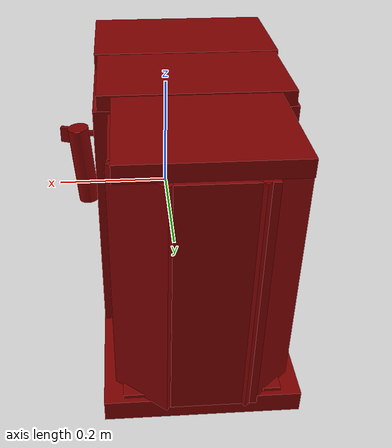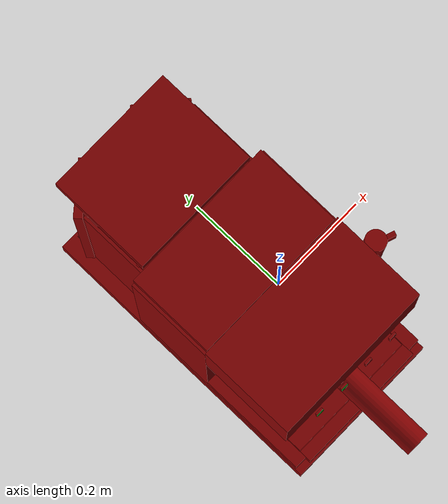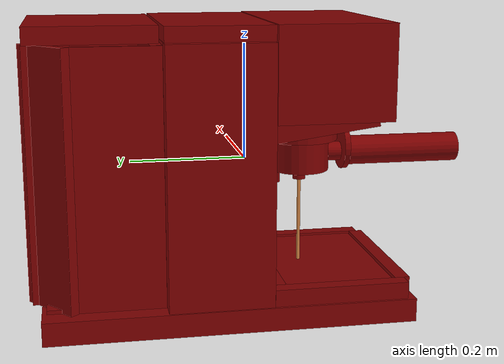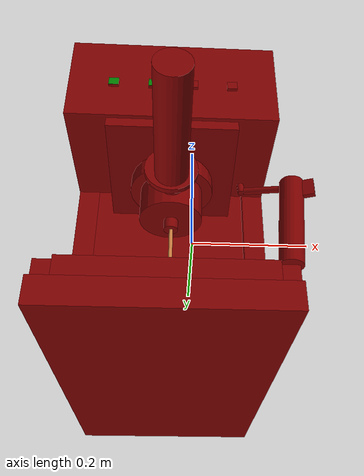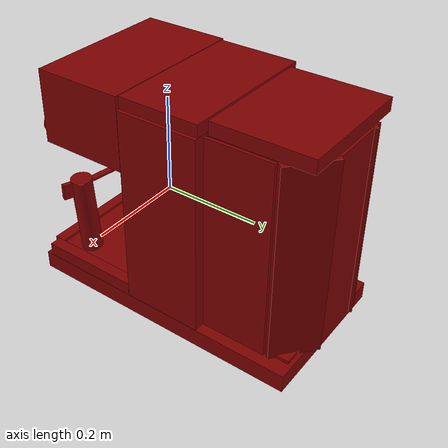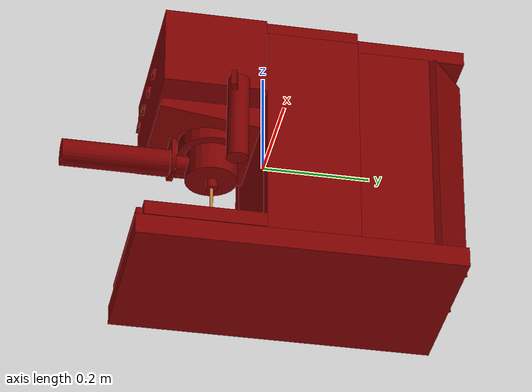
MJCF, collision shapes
<?xml version='1.0' encoding='UTF-8'?>
<mujoco model="model">
  <compiler angle="radian"/>
  <asset>
    <mesh file="visuals/Body001.obj" name="Body001_vis"/>
    <mesh file="visuals/Button001.obj" name="Button001_vis"/>
    <mesh file="visuals/Button002.obj" name="Button002_vis"/>
    <mesh file="visuals/Button003.obj" name="Button003_vis"/>
    <mesh file="visuals/Button004.obj" name="Button004_vis"/>
    <mesh file="visuals/Container001_Clear.obj" name="Container001_Clear_vis"/>
    <mesh file="visuals/Lever001.obj" name="Lever001_vis"/>
    <mesh file="visuals/Lever002.obj" name="Lever002_vis"/>
    <mesh file="visuals/Lid001.obj" name="Lid001_vis"/>
    <mesh file="visuals/Lid002.obj" name="Lid002_vis"/>
    <mesh file="visuals/Lid003.obj" name="Lid003_vis"/>
    <texture file="visuals/T_BC001.png" name="Body001_material" type="2d"/>
    <material name="Body001_material" rgba="1 1 1 1.0" texture="Body001_material" shininess="0.4472135901451111" specular="0.3103448502657381"/>
    <texture file="visuals/T_BC001.png" name="Button001_material" type="2d"/>
    <material name="Button001_material" rgba="1 1 1 1.0" texture="Button001_material" shininess="0.4472135901451111" specular="0.3103448502657381"/>
    <texture file="visuals/T_BC001.png" name="Button002_material" type="2d"/>
    <material name="Button002_material" rgba="1 1 1 1.0" texture="Button002_material" shininess="0.4472135901451111" specular="0.3103448502657381"/>
    <texture file="visuals/T_BC001.png" name="Button003_material" type="2d"/>
    <material name="Button003_material" rgba="1 1 1 1.0" texture="Button003_material" shininess="0.4472135901451111" specular="0.3103448502657381"/>
    <texture file="visuals/T_BC001.png" name="Button004_material" type="2d"/>
    <material name="Button004_material" rgba="1 1 1 1.0" texture="Button004_material" shininess="0.4472135901451111" specular="0.3103448502657381"/>
    <material name="Container001_Clear_material" rgba="0.21932761371135712 0.21932761371135712 0.21932761371135712 0.20000000298023224" shininess="0.4472135901451111" specular="0.3103448502657381"/>
    <texture file="visuals/T_BC001.png" name="Lid001_material" type="2d"/>
    <material name="Lid001_material" rgba="1 1 1 1.0" texture="Lid001_material" shininess="0.4472135901451111" specular="0.3103448502657381"/>
    <texture file="visuals/T_BC001.png" name="Lever001_material" type="2d"/>
    <material name="Lever001_material" rgba="1 1 1 1.0" texture="Lever001_material" shininess="0.4472135901451111" specular="0.3103448502657381"/>
    <texture file="visuals/T_BC001.png" name="Lever002_material" type="2d"/>
    <material name="Lever002_material" rgba="1 1 1 1.0" texture="Lever002_material" shininess="0.4472135901451111" specular="0.3103448502657381"/>
    <texture file="visuals/T_BC001.png" name="Lid002_material" type="2d"/>
    <material name="Lid002_material" rgba="1 1 1 1.0" texture="Lid002_material" shininess="0.4472135901451111" specular="0.3103448502657381"/>
    <texture file="visuals/T_BC001.png" name="Lid003_material" type="2d"/>
    <material name="Lid003_material" rgba="1 1 1 1.0" texture="Lid003_material" shininess="0.4472135901451111" specular="0.3103448502657381"/>
  </asset>
  <default>
    <default class="visual">
      <geom conaffinity="0" contype="0" group="1" type="mesh"/>
    </default>
    <default class="collision">
      <geom group="0" rgba="0.5 0 0 0.5"/>
    </default>
    <default class="spawn">
      <geom group="0" rgba="1 1 1 0.5" contype="0" conaffinity="0"/>
      <site group="0" rgba="1 1 1 0.5"/>
    </default>
    <default class="region">
      <geom group="1" conaffinity="0" contype="0" rgba="0 1 0 0"/>
    </default>
  </default>
  <worldbody>
    <body>
      <body name="object">
        <geom class="collision" type="box" pos="-0.06698377430438995 -0.21905934810638428 0.14914841949939728" size="0.007625220343470573 0.00022514350712299347 0.007682090625166893" quat="0.9989268779754639 -0.04631578177213669 -1.0284169465388057e-17 -1.761066692666002e-24" name="start_button_2" rgba="0.0 0.5 0 0.5"/>
        <geom class="collision" type="box" pos="-0.12744906544685364 -0.2188650667667389 0.14934740960597992" size="0.007625220343470573 0.00018132763216271996 0.007682090625166893" quat="0.9989268779754639 -0.04631578177213669 -1.0284169465388057e-17 -1.761066692666002e-24" name="start_button_1" rgba="0.0 0.5 0 0.5"/>
        <site rgba="0 0 0 0" size="0.009999999776482582 0.009999999776482582" pos="-0.03521912172436714 -0.09033644199371338 -0.19054533541202545" name="receptacle_place_site"/>
        <site type="cylinder" rgba="0.8 0.5 0.25 1" size="0.003000000026077032 0.08108846843242645" pos="-0.03569718077778816 -0.09012578427791595 -0.1128857284784317" name="coffee_liquid"/>
        <geom mesh="Body001_vis" type="mesh" solimp="0.998 0.998 0.001" solref="0.001 1" density="100" friction="0.95 0.3 0.1" class="visual" material="Body001_material"/>
        <geom class="collision" type="box" pos="0.10601072758436203 0.0706346407532692 0.006979886442422867" size="0.017392706125974655 0.08599450439214706 0.2126685529947281" quat="1.0 0.0 0.0 0.0"/>
        <geom class="collision" type="box" pos="-0.03833077847957611 0.05107033997774124 -0.2255401611328125" size="0.16234788298606873 0.30405285954475403 0.019525090232491493" quat="1.0 0.0 0.0 0.0"/>
        <geom class="collision" type="box" pos="-0.03756462782621384 -0.11138033121824265 0.1692173033952713" size="0.16096806526184082 0.0952395647764206 0.07757464796304703" quat="1.0 0.0 0.0 0.0"/>
        <geom class="collision" type="box" pos="-0.03711673989892006 -0.10022946447134018 0.08146994560956955" size="0.09936847537755966 0.10059140622615814 0.02159332111477852" quat="0.9977074861526489 -0.06767409294843674 -1.5026665578034257e-17 -2.6179408185524536e-24"/>
        <geom class="collision" type="box" pos="0.11121337115764618 -0.12672968208789825 -0.19079339504241943" size="0.012803731486201286 0.11179928481578827 0.014126341789960861" quat="1.0 0.0 0.0 0.0"/>
        <geom class="collision" type="box" pos="-0.18583568930625916 -0.12672969698905945 -0.19079339504241943" size="0.012803731486201286 0.11179929971694946 0.014126341789960861" quat="1.0 0.0 0.0 0.0"/>
        <geom class="collision" type="box" pos="-0.03710367530584335 -0.026295773684978485 -0.19079339504241943" size="0.13582965731620789 0.011365379206836224 0.014126341789960861" quat="1.0 0.0 0.0 0.0"/>
        <geom class="collision" type="box" pos="-0.03710367530584335 -0.2364063411951065 -0.19079339504241943" size="0.13582965731620789 0.012578942812979221 0.014126341789960861" quat="1.0 0.0 0.0 0.0"/>
        <geom class="collision" type="cylinder" pos="-0.03651254251599312 -0.08891945332288742 0.052524384111166" size="0.06592085212469101 0.01339646801352501" quat="1.0 0.0 0.0 0.0"/>
        <geom class="collision" type="box" pos="-0.18089686334133148 0.0706346407532692 0.006979886442422867" size="0.017392706125974655 0.08599450439214706 0.2126685529947281" quat="1.0 0.0 0.0 0.0"/>
        <geom class="collision" type="box" pos="-0.03895968198776245 0.14454782009124756 0.006979886442422867" size="0.12488776445388794 0.012081332504749298 0.2126685529947281" quat="1.0 0.0 0.0 0.0"/>
        <geom class="collision" type="box" pos="-0.03895968198776245 -0.010139860212802887 0.006979886442422867" size="0.12488789856433868 0.00527778547257185 0.2126685529947281" quat="1.0 0.0 0.0 0.0"/>
        <geom class="collision" type="box" pos="-0.03895968198776245 0.06472207605838776 0.07898208498954773" size="0.12488776445388794 0.06836161017417908 0.01858154498040676" quat="1.0 0.0 0.0 0.0"/>
        <body name="Button001">
          <joint axis="-2.257804371214515e-18 0.9949027895927429 -0.10083772242069244" pos="-0.12743738293647766 -0.21627914905548096 0.1489403247833252" limited="true" name="Button001_joint" range="0.0 0.002" type="slide" damping="1" frictionloss="1" armature=".01" stiffness="0.2" springref="-0.1"/>
          <geom mesh="Button001_vis" type="mesh" solimp="0.998 0.998 0.001" solref="0.001 1" density="100" friction="0.95 0.3 0.1" class="visual" material="Button001_material"/>
          <geom class="collision" type="box" pos="-0.12744906544685364 -0.21648907661437988 0.14912660419940948" size="0.007625220343470573 0.002039508428424597 0.007682090625166893" quat="0.9989268779754639 -0.04631578177213669 -1.0284169465388057e-17 -1.761066692666002e-24"/>
        </body>
        <body name="Button002">
          <joint axis="-2.7021225760909956e-18 0.9944431781768799 -0.10527441650629044" pos="-0.06743738055229187 -0.21623237431049347 0.14892233908176422" limited="true" name="Button002_joint" range="0.0 0.002" type="slide" damping="1" frictionloss="1" armature=".01" stiffness="0.2" springref="-0.1"/>
          <geom mesh="Button002_vis" type="mesh" solimp="0.998 0.998 0.001" solref="0.001 1" density="100" friction="0.95 0.3 0.1" class="visual" material="Button002_material"/>
          <geom class="collision" type="box" pos="-0.06698377430438995 -0.21657098829746246 0.14891718327999115" size="0.007625220343470573 0.002100009238347411 0.007682090625166893" quat="0.9989268779754639 -0.04631578177213669 -1.0284169465388057e-17 -1.761066692666002e-24"/>
        </body>
        <body name="Button003">
          <joint axis="-2.257804371214515e-18 0.9949027895927429 -0.10083772242069244" pos="-0.0074373818933963776 -0.21627914905548096 0.1489403247833252" limited="true" name="Button003_joint" range="0.0 0.002" type="slide" damping="1" frictionloss="1" armature=".01" stiffness="0.2" springref="-0.1"/>
          <geom mesh="Button003_vis" type="mesh" solimp="0.998 0.998 0.001" solref="0.001 1" density="100" friction="0.95 0.3 0.1" class="visual" material="Button003_material"/>
          <geom class="collision" type="box" pos="-0.007454393431544304 -0.21676823496818542 0.14893551170825958" size="0.007625220343470573 0.0022981101647019386 0.007682090625166893" quat="0.9989268779754639 -0.04631578177213669 -1.0284169465388057e-17 -1.761066692666002e-24"/>
        </body>
        <body name="Button004">
          <joint axis="-2.7021225760909956e-18 0.9944431781768799 -0.10527441650629044" pos="0.052562616765499115 -0.21626147627830505 0.1489265114068985" limited="true" name="Button004_joint" range="0.0 0.002" type="slide" damping="1" frictionloss="1" armature=".01" stiffness="0.2" springref="-0.1"/>
          <geom mesh="Button004_vis" type="mesh" solimp="0.998 0.998 0.001" solref="0.001 1" density="100" friction="0.95 0.3 0.1" class="visual" material="Button004_material"/>
          <geom class="collision" type="box" pos="0.05267142876982689 -0.21676823496818542 0.14893551170825958" size="0.007625220343470573 0.0022981101647019386 0.007682090625166893" quat="0.9989268779754639 -0.04631578177213669 -1.0284169465388057e-17 -1.761066692666002e-24"/>
        </body>
        <body name="Container001_Clear">
          <joint axis="0.0 0.0 1.0" pos="-0.034885503351688385 0.26551902294158936 0.019932106137275696" limited="true" name="Container001_Clear_joint" range="0.0 0.15" type="slide" damping="1" frictionloss="1" armature=".01" stiffness="0.05"/>
          <geom mesh="Container001_Clear_vis" type="mesh" solimp="0.998 0.998 0.001" solref="0.001 1" density="100" friction="0.95 0.3 0.1" class="visual" material="Container001_Clear_material"/>
          <geom class="collision" type="box" pos="0.09781499952077866 0.22729872167110443 0.005407668650150299" size="0.0033565093763172626 0.06981059908866882 0.20998695492744446" quat="1.0 0.0 0.0 0.0"/>
          <geom class="collision" type="box" pos="-0.16869841516017914 0.22729872167110443 0.005407668650150299" size="0.0030643863137811422 0.06981059908866882 0.20998695492744446" quat="1.0 0.0 0.0 0.0"/>
          <geom class="collision" type="box" pos="-0.052766382694244385 0.3578241169452667 0.005407668650150299" size="0.06981059908866882 0.012057838961482048 0.20998695492744446" quat="1.0 0.0 0.0 0.0"/>
          <geom class="collision" type="box" pos="0.05873403698205948 0.33637818694114685 0.005407668650150299" size="0.008076028898358345 0.05256223306059837 0.20998695492744446" quat="0.4269176721572876 0.0 -0.0 -0.904290497303009"/>
          <geom class="collision" type="box" pos="-0.13853377103805542 0.33637818694114685 0.005407668650150299" size="0.008076028898358345 0.05256223306059837 0.20998695492744446" quat="0.4269179105758667 0.0 0.0 0.9042903780937195"/>
          <geom class="collision" type="box" pos="-0.037373848259449005 0.16690471768379211 0.005407668650150299" size="0.12995770573616028 0.009416602551937103 0.20998695492744446" quat="1.0 0.0 0.0 0.0"/>
          <geom class="collision" type="box" pos="-0.037373848259449005 0.26180240511894226 -0.20134928822517395" size="0.12995770573616028 0.08550111949443817 0.003229990601539612" quat="1.0 0.0 0.0 0.0"/>
          <body name="Lid001">
            <joint axis="0.0 0.0 1.0" pos="-0.03497689589858055 0.2646665573120117 0.2320042997598648" limited="true" name="Lid001_joint" range="0.0 0.1" type="slide" damping="1" frictionloss="1" armature=".01" stiffness="0.05"/>
            <geom mesh="Lid001_vis" type="mesh" solimp="0.998 0.998 0.001" solref="0.001 1" density="100" friction="0.95 0.3 0.1" class="visual" material="Lid001_material"/>
            <geom class="collision" type="box" pos="-0.034957155585289 0.26454535126686096 0.23185306787490845" size="0.13023555278778076 0.10215763747692108 0.014017188921570778" quat="1.0 0.0 0.0 0.0"/>
          </body>
        </body>
        <body name="Lever001">
          <joint axis="0.0 0.0 1.0" pos="-0.03650657832622528 -0.09061235934495926 0.03931407257914543" limited="true" name="Lever001_joint" range="-0.7853981633974483 0.7853981633974483" type="hinge" damping="1" frictionloss="1" armature=".01" stiffness="1"/>
          <geom mesh="Lever001_vis" type="mesh" solimp="0.998 0.998 0.001" solref="0.001 1" density="100" friction="0.95 0.3 0.1" class="visual" material="Lever001_material"/>
          <geom class="collision" type="cylinder" pos="-0.03671518340706825 -0.09094586968421936 0.011099593713879585" size="0.04918080195784569 0.026982350274920464" quat="1.0 0.0 0.0 0.0"/>
          <geom class="collision" type="cylinder" pos="-0.036217790096998215 -0.0900716558098793 -0.024446610361337662" size="0.011178073473274708 0.008502582088112831" quat="1.0 0.0 0.0 0.0"/>
          <geom class="collision" type="cylinder" pos="-0.03547176346182823 -0.15006320178508759 0.013637365773320198" size="0.01639302261173725 0.013668706640601158" quat="0.7071067094802856 0.7071068286895752 0.0 0.0"/>
          <geom class="collision" type="cylinder" pos="-0.03699525445699692 -0.16622395813465118 0.02375313639640808" size="0.040322110056877136 0.004602673463523388" quat="0.7071067094802856 0.7071068286895752 0.0 0.0"/>
          <geom class="collision" type="cylinder" pos="-0.03654169663786888 -0.27143773436546326 0.014548263512551785" size="0.0252190250903368 0.1012909859418869" quat="0.7071067094802856 0.7071068286895752 0.0 0.0"/>
        </body>
        <body name="Lever002">
          <joint axis="0.0 0.0 -1.0" pos="0.08095161616802216 -0.04838235676288605 0.10103465616703033" limited="true" name="Lever002_joint" range="0.0 0.7853981633974483" type="hinge" damping="1" frictionloss="1" armature=".01" stiffness="1"/>
          <geom mesh="Lever002_vis" type="mesh" solimp="0.998 0.998 0.001" solref="0.001 1" density="100" friction="0.95 0.3 0.1" class="visual" material="Lever002_material"/>
          <geom class="collision" type="cylinder" pos="0.08236533403396606 -0.049784302711486816 0.08201396465301514" size="0.005850054789334536 0.008454986847937107" quat="0.051075659692287445 0.02428624778985977 0.9983522295951843 -0.009711823426187038"/>
          <geom class="collision" type="cylinder" pos="0.15875956416130066 -0.07665718346834183 -0.0035187676548957825" size="0.0204514991492033 0.08099197596311569" quat="0.9991809725761414 3.921905161741179e-11 0.04046490415930748 6.275537423050537e-09"/>
          <geom class="collision" type="cylinder" pos="0.1157170906662941 -0.06177939847111702 0.07154429703950882" size="0.005850055254995823 0.03005160763859749" quat="0.6449256539344788 0.12627291679382324 0.7457898259162903 -0.10919517278671265"/>
          <geom class="collision" type="box" pos="0.18913443386554718 -0.08817895501852036 0.05818290635943413" size="0.010453430004417896 0.0047595868818461895 0.015285131521522999" quat="0.9857469201087952 0.0 -0.0 -0.16823503375053406"/>
        </body>
        <body name="Lid002">
          <joint axis="1.0 0.0 0.0" pos="-0.03756638616323471 -0.026186585426330566 0.24353495240211487" limited="true" name="Lid002_joint" range="0.0 1.5707963267948966" type="hinge" damping="1" frictionloss="1" armature=".01" stiffness="0.05"/>
          <geom mesh="Lid002_vis" type="mesh" solimp="0.998 0.998 0.001" solref="0.001 1" density="100" friction="0.95 0.3 0.1" class="visual" material="Lid002_material"/>
          <geom class="collision" type="box" pos="-0.03754377365112305 0.07103443890810013 0.23336616158485413" size="0.15497025847434998 0.08610165864229202 0.012504090555012226" quat="1.0 0.0 0.0 0.0"/>
        </body>
        <body name="Lid003">
          <joint axis="0.0 0.0 1.0" pos="-0.03782738000154495 -0.13096246123313904 -0.19377021491527557" limited="true" name="Lid003_joint" range="0.0 0.08" type="slide" damping="1" frictionloss="1" armature=".01" stiffness="0.05"/>
          <geom mesh="Lid003_vis" type="mesh" solimp="0.998 0.998 0.001" solref="0.001 1" density="100" friction="0.95 0.3 0.1" class="visual" material="Lid003_material"/>
          <geom class="collision" type="box" pos="-0.036949075758457184 -0.1304827332496643 -0.18221689760684967" size="0.13475464284420013 0.09173449128866196 0.0015478000277653337" quat="1.0 0.0 0.0 0.0"/>
          <geom class="collision" type="box" pos="-0.06493166089057922 -0.10460221767425537 -0.19335885345935822" size="0.011739666573703289 0.026104116812348366 0.009717551991343498" quat="1.0 0.0 0.0 0.0"/>
          <geom class="collision" type="box" pos="-0.010996514931321144 -0.10460221767425537 -0.19335885345935822" size="0.011739666573703289 0.026104116812348366 0.009717551991343498" quat="1.0 0.0 0.0 0.0"/>
        </body>
        <geom class="region" name="reg_main" type="box" pos="-0.03782742843031883 0.06043069064617157 0.0" size="0.1613236367702484 0.31229305267333984 0.24564984440803528"/>
      </body>
    </body>
  </worldbody>
  <actuator>
    <motor name="Button001_joint_actuator" joint="Button001_joint" gear="0.5"/>
    <motor name="Button002_joint_actuator" joint="Button002_joint" gear="0.5"/>
    <motor name="Button003_joint_actuator" joint="Button003_joint" gear="0.5"/>
    <motor name="Button004_joint_actuator" joint="Button004_joint" gear="0.5"/>
    <motor name="Container001_Clear_joint_actuator" joint="Container001_Clear_joint" gear="10"/>
    <motor name="Lever001_joint_actuator" joint="Lever001_joint" gear="10"/>
    <motor name="Lever002_joint_actuator" joint="Lever002_joint" gear="10"/>
    <motor name="Lid002_joint_actuator" joint="Lid002_joint" gear="10"/>
    <motor name="Lid003_joint_actuator" joint="Lid003_joint" gear="10"/>
    <motor name="Lid001_joint_actuator" joint="Lid001_joint" gear="10"/>
  </actuator>
</mujoco>
